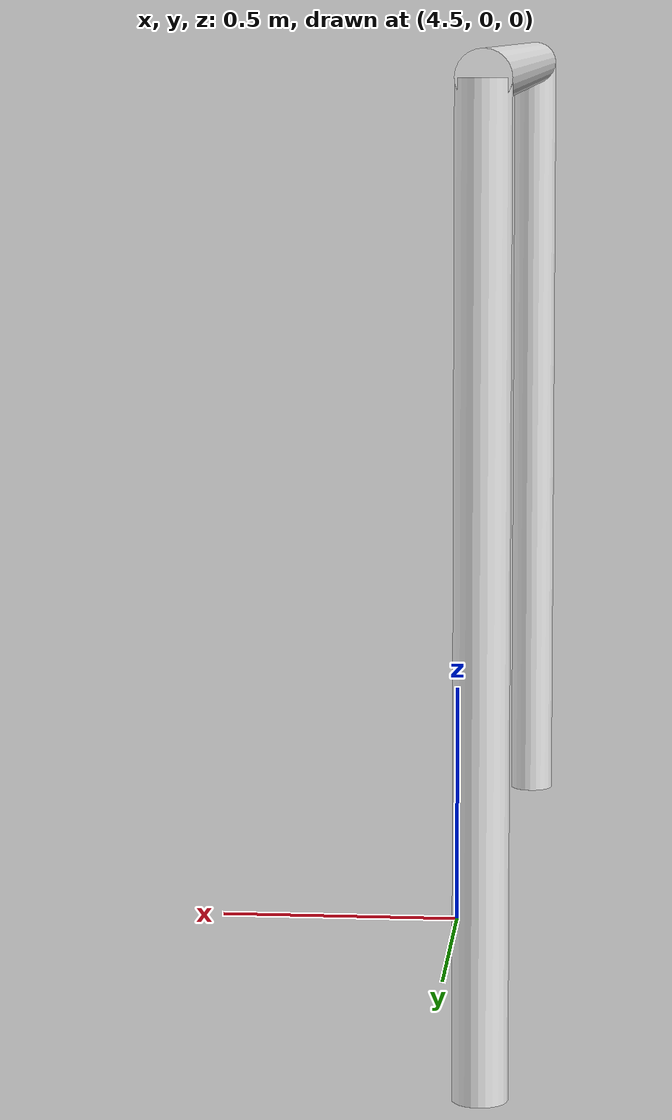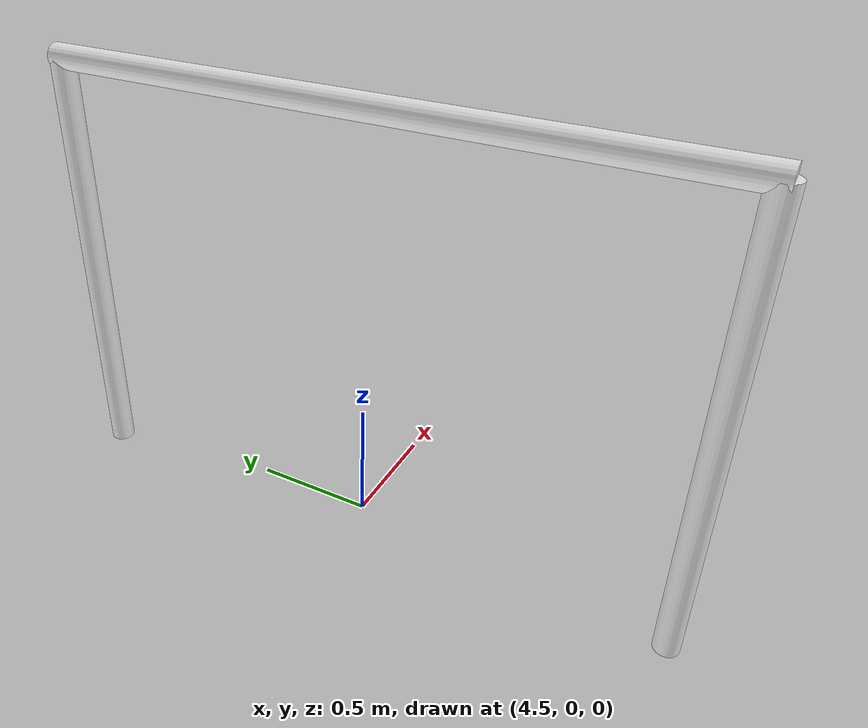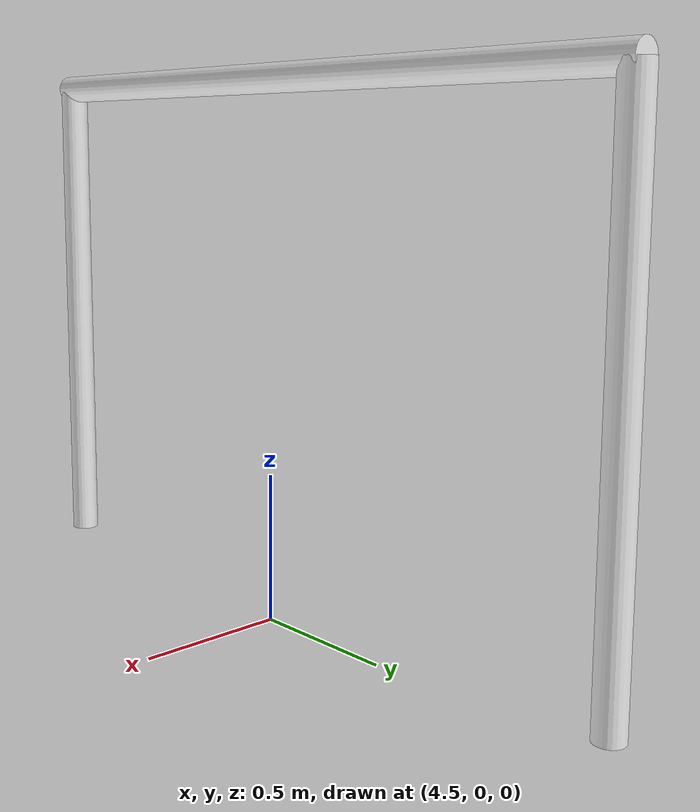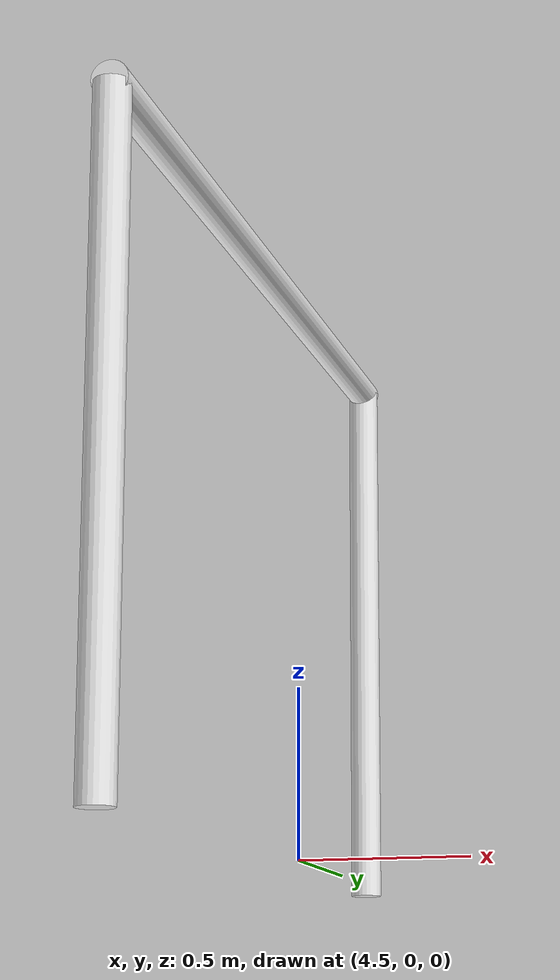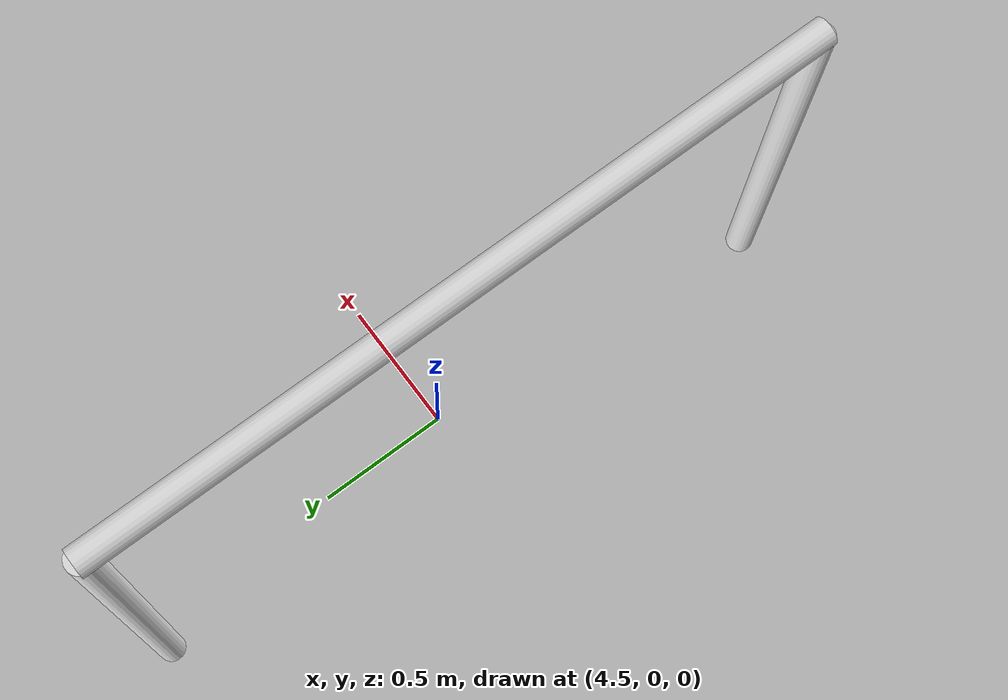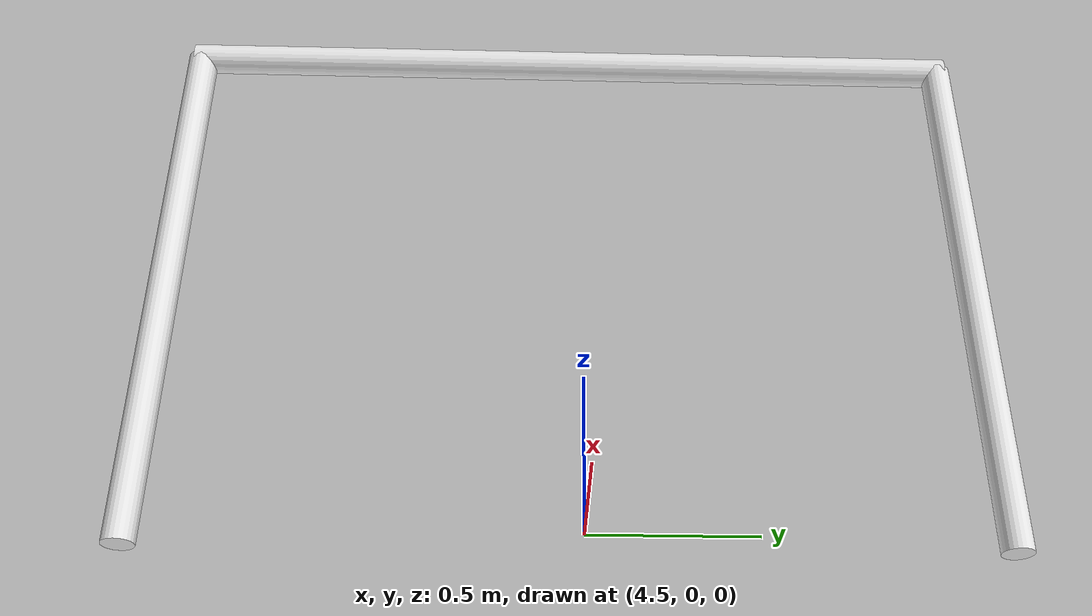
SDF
<sdf version='1.6'>
    <model name='Test Goal'>
        <static>false</static>
        <link name='left_post'>
            <pose frame=''>0 1.3 0.9 0 -0 0</pose>
            <collision name='collision'>
                <geometry>
                    <cylinder>
                        <radius>0.05</radius>
                        <length>1.8</length>
                    </cylinder>
                </geometry>
                <max_contacts>10</max_contacts>
                <surface>
                    <contact>
                        <ode/>
                    </contact>
                    <bounce/>
                    <friction>
                        <torsional>
                            <ode/>
                        </torsional>
                        <ode/>
                    </friction>
                </surface>
            </collision>
            <inertial>
                <mass>0</mass>
                <inertia>
                    <ixx>0.0</ixx>
                    <ixy>0.0</ixy>
                    <ixz>0.0</ixz>
                    <iyy>0.0</iyy>
                    <iyz>0.0</iyz>
                    <izz>0.0</izz>
                </inertia>
            </inertial>
            <visual name='visual'>
                <geometry>
                    <cylinder>
                        <radius>0.05</radius>
                        <length>1.8</length>
                    </cylinder>
                </geometry>
                <material>
                    <script>
                        <uri>file://media/materials/scripts/gazebo.material</uri>
                        <name>Gazebo/White</name>
                    </script>
                </material>
            </visual>
            <self_collide>0</self_collide>
            <kinematic>1</kinematic>
        </link>
        <link name='right_post'>
            <pose frame=''>0 -1.3 0.9 0 -0 0</pose>
            <inertial>
                <mass>0</mass>
                <inertia>
                    <ixx>0.0</ixx>
                    <ixy>0.0</ixy>
                    <ixz>0.0</ixz>
                    <iyy>0.0</iyy>
                    <iyz>0.0</iyz>
                    <izz>0.0</izz>
                </inertia>
            </inertial>
            <collision name='collision'>
                <geometry>
                    <cylinder>
                        <radius>0.05</radius>
                        <length>1.8</length>
                    </cylinder>
                </geometry>
                <max_contacts>10</max_contacts>
                <surface>
                    <contact>
                        <ode/>
                    </contact>
                    <bounce/>
                    <friction>
                        <torsional>
                            <ode/>
                        </torsional>
                        <ode/>
                    </friction>
                </surface>
            </collision>
            <visual name='visual'>
                <geometry>
                    <cylinder>
                        <radius>0.05</radius>
                        <length>1.8</length>
                    </cylinder>
                </geometry>
                <material>
                    <script>
                        <uri>file://media/materials/scripts/gazebo.material</uri>
                        <name>Gazebo/White</name>
                    </script>
                </material>
            </visual>
            <self_collide>0</self_collide>
            <kinematic>1</kinematic>
        </link>
        <link name='crossbar'>
            <pose frame=''>0 0 1.8 1.57 1.57 0</pose>
            <inertial>
                <mass>0</mass>
                <inertia>
                    <ixx>0.0</ixx>
                    <ixy>0.0</ixy>
                    <ixz>0.0</ixz>
                    <iyy>0.0</iyy>
                    <iyz>0.0</iyz>
                    <izz>0.0</izz>
                </inertia>
            </inertial>
            <collision name='collision'>
                <geometry>
                    <cylinder>
                        <radius>0.05</radius>
                        <length>2.65</length>
                    </cylinder>
                </geometry>
                <max_contacts>10</max_contacts>
                <surface>
                    <contact>
                        <ode/>
                    </contact>
                    <bounce/>
                    <friction>
                        <torsional>
                            <ode/>
                        </torsional>
                        <ode/>
                    </friction>
                </surface>
            </collision>
            <visual name='visual'>
                <geometry>
                    <cylinder>
                        <radius>0.05</radius>
                        <length>2.65</length>
                    </cylinder>
                </geometry>
                <material>
                    <script>
                        <uri>file://media/materials/scripts/gazebo.material</uri>
                        <name>Gazebo/White</name>
                    </script>
                </material>
            </visual>
            <self_collide>0</self_collide>
            <kinematic>1</kinematic>
        </link>
        <pose frame=''>4.38819 -0.032635 0 0 -0 0</pose>
    </model>
</sdf>
